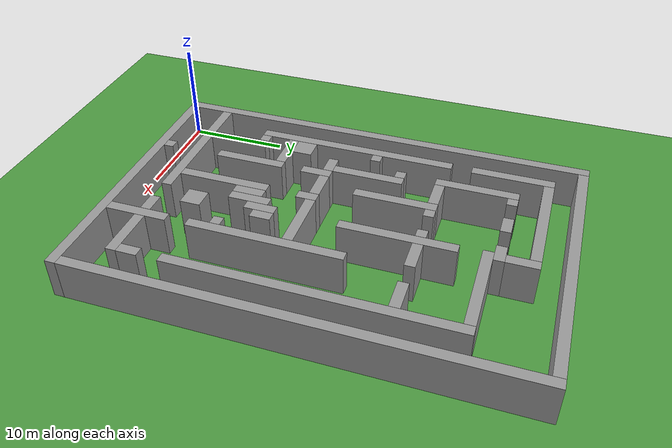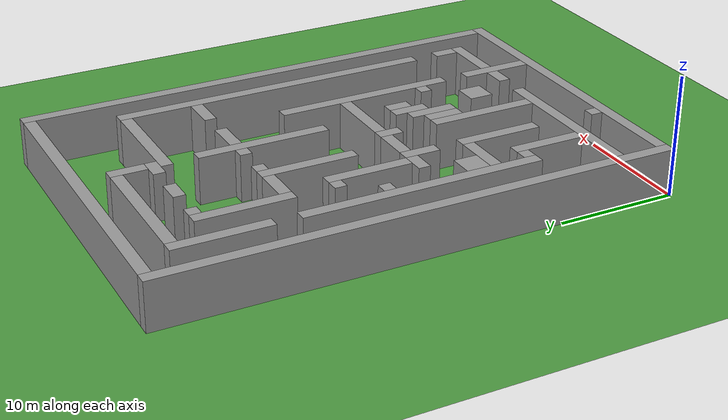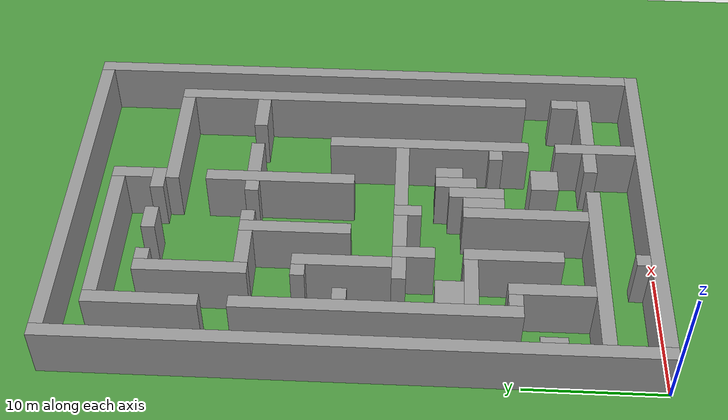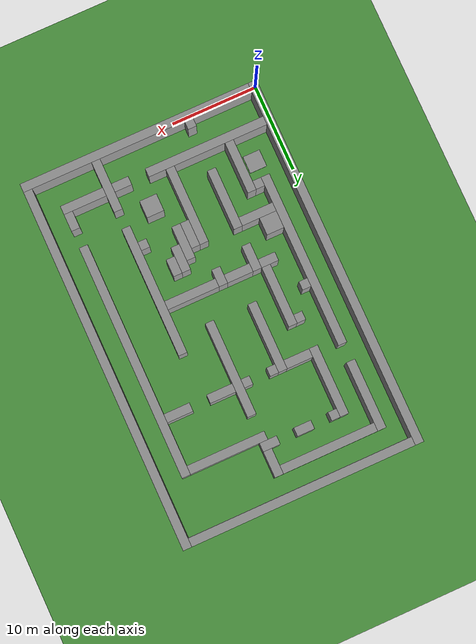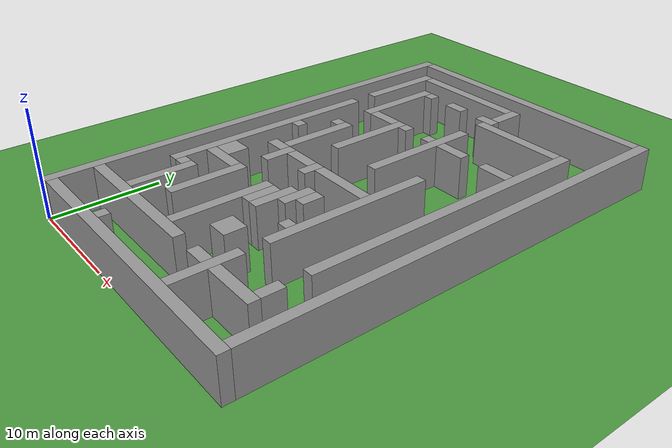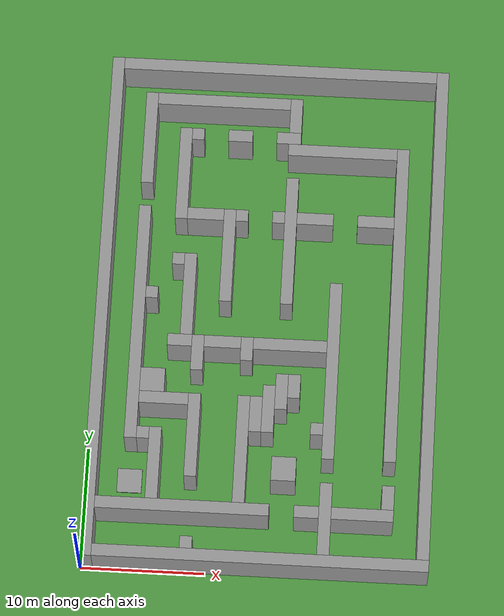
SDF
<sdf version="1.6">
 <world name="default">
  <light name="sun" type="directional">
   <pose>0 0 10 0 -0 0</pose>
   <diffuse>0.8 0.8 0.8 1</diffuse>
   <specular>0.1 0.1 0.1 1</specular>
   <attenuation>
    <range>1000</range>
    <constant>0.9</constant>
    <linear>0.01</linear>
    <quadratic>0.001</quadratic>
   </attenuation>
   <direction>-0.5 0.5 -1</direction>
  </light>
  <model name="ground_plane">
   <static>1</static>
   <link name="link">
    <collision name="collision">
     <geometry><plane><normal>0 0 1</normal><size>100 100</size></plane></geometry>
     <surface><friction><ode><mu>100</mu><mu2>50</mu2></ode></friction></surface>
    </collision>
    <visual name="visual">
     <cast_shadows>0</cast_shadows>
     <geometry><plane><normal>0 0 1</normal><size>100 100</size></plane></geometry>
     <material>
      <script><uri>file://media/materials/scripts/gazebo.material</uri><name>Gazebo/Grass</name></script>
     </material>
    </visual>
   </link>
  </model>
  <gravity>0 0 -9.8</gravity>
  <magnetic_field>6e-06 2.3e-05 -4.2e-05</magnetic_field>
  <atmosphere type="adiabatic"/>
  <physics name="default_physics" default="0" type="ode">
   <max_step_size>0.001</max_step_size>
   <real_time_factor>1</real_time_factor>
   <real_time_update_rate>1000</real_time_update_rate>
  </physics>
  <scene><ambient>0.4 0.4 0.4 1</ambient><background>0.7 0.7 0.7 1</background><shadows>1</shadows></scene>
  <spherical_coordinates>
   <surface_model>EARTH_WGS84</surface_model>
   <latitude_deg>0</latitude_deg>
   <longitude_deg>0</longitude_deg>
   <elevation>0</elevation>
   <heading_deg>0</heading_deg>
  </spherical_coordinates>
  <model name="wall">
   <pose>0.500000 21.500000 2 0 0 0</pose>
   <static>1</static>
   <link name="wall-link">
    <collision name="collision"><geometry><box><size>1 43 4</size></box></geometry></collision>
    <visual name="visual">
     <geometry><box><size>1 43 4</size></box></geometry>
     <material>
      <script><name>Gazebo/Grey</name><uri>file://media/materials/scripts/gazebo.material</uri></script>
     </material>
    </visual>
    <gravity>0</gravity>
   </link>
  </model>
  <model name="wall">
   <pose>14.500000 0.500000 2 0 0 0</pose>
   <static>1</static>
   <link name="wall-link">
    <collision name="collision"><geometry><box><size>27 1 4</size></box></geometry></collision>
    <visual name="visual">
     <geometry><box><size>27 1 4</size></box></geometry>
     <material>
      <script><name>Gazebo/Grey</name><uri>file://media/materials/scripts/gazebo.material</uri></script>
     </material>
    </visual>
    <gravity>0</gravity>
   </link>
  </model>
  <model name="wall">
   <pose>8.500000 1.500000 2 0 0 0</pose>
   <static>1</static>
   <link name="wall-link">
    <collision name="collision"><geometry><box><size>1 1 4</size></box></geometry></collision>
    <visual name="visual">
     <geometry><box><size>1 1 4</size></box></geometry>
     <material>
      <script><name>Gazebo/Grey</name><uri>file://media/materials/scripts/gazebo.material</uri></script>
     </material>
    </visual>
    <gravity>0</gravity>
   </link>
  </model>
  <model name="wall">
   <pose>19.500000 4.000000 2 0 0 0</pose>
   <static>1</static>
   <link name="wall-link">
    <collision name="collision"><geometry><box><size>1 6 4</size></box></geometry></collision>
    <visual name="visual">
     <geometry><box><size>1 6 4</size></box></geometry>
     <material>
      <script><name>Gazebo/Grey</name><uri>file://media/materials/scripts/gazebo.material</uri></script>
     </material>
    </visual>
    <gravity>0</gravity>
   </link>
  </model>
  <model name="wall">
   <pose>27.500000 22.000000 2 0 0 0</pose>
   <static>1</static>
   <link name="wall-link">
    <collision name="collision"><geometry><box><size>1 42 4</size></box></geometry></collision>
    <visual name="visual">
     <geometry><box><size>1 42 4</size></box></geometry>
     <material>
      <script><name>Gazebo/Grey</name><uri>file://media/materials/scripts/gazebo.material</uri></script>
     </material>
    </visual>
    <gravity>0</gravity>
   </link>
  </model>
  <model name="wall">
   <pose>8.000000 4.500000 2 0 0 0</pose>
   <static>1</static>
   <link name="wall-link">
    <collision name="collision"><geometry><box><size>14 1 4</size></box></geometry></collision>
    <visual name="visual">
     <geometry><box><size>14 1 4</size></box></geometry>
     <material>
      <script><name>Gazebo/Grey</name><uri>file://media/materials/scripts/gazebo.material</uri></script>
     </material>
    </visual>
    <gravity>0</gravity>
   </link>
  </model>
  <model name="wall">
   <pose>18.000000 4.500000 2 0 0 0</pose>
   <static>1</static>
   <link name="wall-link">
    <collision name="collision"><geometry><box><size>2 1 4</size></box></geometry></collision>
    <visual name="visual">
     <geometry><box><size>2 1 4</size></box></geometry>
     <material>
      <script><name>Gazebo/Grey</name><uri>file://media/materials/scripts/gazebo.material</uri></script>
     </material>
    </visual>
    <gravity>0</gravity>
   </link>
  </model>
  <model name="wall">
   <pose>22.500000 4.500000 2 0 0 0</pose>
   <static>1</static>
   <link name="wall-link">
    <collision name="collision"><geometry><box><size>5 1 4</size></box></geometry></collision>
    <visual name="visual">
     <geometry><box><size>5 1 4</size></box></geometry>
     <material>
      <script><name>Gazebo/Grey</name><uri>file://media/materials/scripts/gazebo.material</uri></script>
     </material>
    </visual>
    <gravity>0</gravity>
   </link>
  </model>
  <model name="wall">
   <pose>5.500000 8.000000 2 0 0 0</pose>
   <static>1</static>
   <link name="wall-link">
    <collision name="collision"><geometry><box><size>1 6 4</size></box></geometry></collision>
    <visual name="visual">
     <geometry><box><size>1 6 4</size></box></geometry>
     <material>
      <script><name>Gazebo/Grey</name><uri>file://media/materials/scripts/gazebo.material</uri></script>
     </material>
    </visual>
    <gravity>0</gravity>
   </link>
  </model>
  <model name="wall">
   <pose>12.500000 9.500000 2 0 0 0</pose>
   <static>1</static>
   <link name="wall-link">
    <collision name="collision"><geometry><box><size>1 9 4</size></box></geometry></collision>
    <visual name="visual">
     <geometry><box><size>1 9 4</size></box></geometry>
     <material>
      <script><name>Gazebo/Grey</name><uri>file://media/materials/scripts/gazebo.material</uri></script>
     </material>
    </visual>
    <gravity>0</gravity>
   </link>
  </model>
  <model name="wall">
   <pose>24.500000 6.000000 2 0 0 0</pose>
   <static>1</static>
   <link name="wall-link">
    <collision name="collision"><geometry><box><size>1 2 4</size></box></geometry></collision>
    <visual name="visual">
     <geometry><box><size>1 2 4</size></box></geometry>
     <material>
      <script><name>Gazebo/Grey</name><uri>file://media/materials/scripts/gazebo.material</uri></script>
     </material>
    </visual>
    <gravity>0</gravity>
   </link>
  </model>
  <model name="wall">
   <pose>8.500000 10.500000 2 0 0 0</pose>
   <static>1</static>
   <link name="wall-link">
    <collision name="collision"><geometry><box><size>1 7 4</size></box></geometry></collision>
    <visual name="visual">
     <geometry><box><size>1 7 4</size></box></geometry>
     <material>
      <script><name>Gazebo/Grey</name><uri>file://media/materials/scripts/gazebo.material</uri></script>
     </material>
    </visual>
    <gravity>0</gravity>
   </link>
  </model>
  <model name="wall">
   <pose>16.000000 8.000000 2 0 0 0</pose>
   <static>1</static>
   <link name="wall-link">
    <collision name="collision"><geometry><box><size>2 2 4</size></box></geometry></collision>
    <visual name="visual">
     <geometry><box><size>2 2 4</size></box></geometry>
     <material>
      <script><name>Gazebo/Grey</name><uri>file://media/materials/scripts/gazebo.material</uri></script>
     </material>
    </visual>
    <gravity>0</gravity>
   </link>
  </model>
  <model name="wall">
   <pose>19.500000 16.500000 2 0 0 0</pose>
   <static>1</static>
   <link name="wall-link">
    <collision name="collision"><geometry><box><size>1 15 4</size></box></geometry></collision>
    <visual name="visual">
     <geometry><box><size>1 15 4</size></box></geometry>
     <material>
      <script><name>Gazebo/Grey</name><uri>file://media/materials/scripts/gazebo.material</uri></script>
     </material>
    </visual>
    <gravity>0</gravity>
   </link>
  </model>
  <model name="wall">
   <pose>24.500000 22.500000 2 0 0 0</pose>
   <static>1</static>
   <link name="wall-link">
    <collision name="collision"><geometry><box><size>1 27 4</size></box></geometry></collision>
    <visual name="visual">
     <geometry><box><size>1 27 4</size></box></geometry>
     <material>
      <script><name>Gazebo/Grey</name><uri>file://media/materials/scripts/gazebo.material</uri></script>
     </material>
    </visual>
    <gravity>0</gravity>
   </link>
  </model>
  <model name="wall">
   <pose>3.500000 20.000000 2 0 0 0</pose>
   <static>1</static>
   <link name="wall-link">
    <collision name="collision"><geometry><box><size>1 20 4</size></box></geometry></collision>
    <visual name="visual">
     <geometry><box><size>1 20 4</size></box></geometry>
     <material>
      <script><name>Gazebo/Grey</name><uri>file://media/materials/scripts/gazebo.material</uri></script>
     </material>
    </visual>
    <gravity>0</gravity>
   </link>
  </model>
  <model name="wall">
   <pose>4.500000 10.500000 2 0 0 0</pose>
   <static>1</static>
   <link name="wall-link">
    <collision name="collision"><geometry><box><size>1 1 4</size></box></geometry></collision>
    <visual name="visual">
     <geometry><box><size>1 1 4</size></box></geometry>
     <material>
      <script><name>Gazebo/Grey</name><uri>file://media/materials/scripts/gazebo.material</uri></script>
     </material>
    </visual>
    <gravity>0</gravity>
   </link>
  </model>
  <model name="wall">
   <pose>13.500000 12.500000 2 0 0 0</pose>
   <static>1</static>
   <link name="wall-link">
    <collision name="collision"><geometry><box><size>1 3 4</size></box></geometry></collision>
    <visual name="visual">
     <geometry><box><size>1 3 4</size></box></geometry>
     <material>
      <script><name>Gazebo/Grey</name><uri>file://media/materials/scripts/gazebo.material</uri></script>
     </material>
    </visual>
    <gravity>0</gravity>
   </link>
  </model>
  <model name="wall">
   <pose>14.500000 13.000000 2 0 0 0</pose>
   <static>1</static>
   <link name="wall-link">
    <collision name="collision"><geometry><box><size>1 4 4</size></box></geometry></collision>
    <visual name="visual">
     <geometry><box><size>1 4 4</size></box></geometry>
     <material>
      <script><name>Gazebo/Grey</name><uri>file://media/materials/scripts/gazebo.material</uri></script>
     </material>
    </visual>
    <gravity>0</gravity>
   </link>
  </model>
  <model name="wall">
   <pose>18.500000 11.500000 2 0 0 0</pose>
   <static>1</static>
   <link name="wall-link">
    <collision name="collision"><geometry><box><size>1 1 4</size></box></geometry></collision>
    <visual name="visual">
     <geometry><box><size>1 1 4</size></box></geometry>
     <material>
      <script><name>Gazebo/Grey</name><uri>file://media/materials/scripts/gazebo.material</uri></script>
     </material>
    </visual>
    <gravity>0</gravity>
   </link>
  </model>
  <model name="wall">
   <pose>6.000000 13.500000 2 0 0 0</pose>
   <static>1</static>
   <link name="wall-link">
    <collision name="collision"><geometry><box><size>4 1 4</size></box></geometry></collision>
    <visual name="visual">
     <geometry><box><size>4 1 4</size></box></geometry>
     <material>
      <script><name>Gazebo/Grey</name><uri>file://media/materials/scripts/gazebo.material</uri></script>
     </material>
    </visual>
    <gravity>0</gravity>
   </link>
  </model>
  <model name="wall">
   <pose>15.500000 14.500000 2 0 0 0</pose>
   <static>1</static>
   <link name="wall-link">
    <collision name="collision"><geometry><box><size>1 3 4</size></box></geometry></collision>
    <visual name="visual">
     <geometry><box><size>1 3 4</size></box></geometry>
     <material>
      <script><name>Gazebo/Grey</name><uri>file://media/materials/scripts/gazebo.material</uri></script>
     </material>
    </visual>
    <gravity>0</gravity>
   </link>
  </model>
  <model name="wall">
   <pose>5.000000 15.000000 2 0 0 0</pose>
   <static>1</static>
   <link name="wall-link">
    <collision name="collision"><geometry><box><size>2 2 4</size></box></geometry></collision>
    <visual name="visual">
     <geometry><box><size>2 2 4</size></box></geometry>
     <material>
      <script><name>Gazebo/Grey</name><uri>file://media/materials/scripts/gazebo.material</uri></script>
     </material>
    </visual>
    <gravity>0</gravity>
   </link>
  </model>
  <model name="wall">
   <pose>16.500000 15.000000 2 0 0 0</pose>
   <static>1</static>
   <link name="wall-link">
    <collision name="collision"><geometry><box><size>1 2 4</size></box></geometry></collision>
    <visual name="visual">
     <geometry><box><size>1 2 4</size></box></geometry>
     <material>
      <script><name>Gazebo/Grey</name><uri>file://media/materials/scripts/gazebo.material</uri></script>
     </material>
    </visual>
    <gravity>0</gravity>
   </link>
  </model>
  <model name="wall">
   <pose>8.500000 17.500000 2 0 0 0</pose>
   <static>1</static>
   <link name="wall-link">
    <collision name="collision"><geometry><box><size>1 3 4</size></box></geometry></collision>
    <visual name="visual">
     <geometry><box><size>1 3 4</size></box></geometry>
     <material>
      <script><name>Gazebo/Grey</name><uri>file://media/materials/scripts/gazebo.material</uri></script>
     </material>
    </visual>
    <gravity>0</gravity>
   </link>
  </model>
  <model name="wall">
   <pose>12.500000 18.000000 2 0 0 0</pose>
   <static>1</static>
   <link name="wall-link">
    <collision name="collision"><geometry><box><size>1 2 4</size></box></geometry></collision>
    <visual name="visual">
     <geometry><box><size>1 2 4</size></box></geometry>
     <material>
      <script><name>Gazebo/Grey</name><uri>file://media/materials/scripts/gazebo.material</uri></script>
     </material>
    </visual>
    <gravity>0</gravity>
   </link>
  </model>
  <model name="wall">
   <pose>7.000000 18.500000 2 0 0 0</pose>
   <static>1</static>
   <link name="wall-link">
    <collision name="collision"><geometry><box><size>2 1 4</size></box></geometry></collision>
    <visual name="visual">
     <geometry><box><size>2 1 4</size></box></geometry>
     <material>
      <script><name>Gazebo/Grey</name><uri>file://media/materials/scripts/gazebo.material</uri></script>
     </material>
    </visual>
    <gravity>0</gravity>
   </link>
  </model>
  <model name="wall">
   <pose>10.500000 18.500000 2 0 0 0</pose>
   <static>1</static>
   <link name="wall-link">
    <collision name="collision"><geometry><box><size>3 1 4</size></box></geometry></collision>
    <visual name="visual">
     <geometry><box><size>3 1 4</size></box></geometry>
     <material>
      <script><name>Gazebo/Grey</name><uri>file://media/materials/scripts/gazebo.material</uri></script>
     </material>
    </visual>
    <gravity>0</gravity>
   </link>
  </model>
  <model name="wall">
   <pose>16.000000 18.500000 2 0 0 0</pose>
   <static>1</static>
   <link name="wall-link">
    <collision name="collision"><geometry><box><size>6 1 4</size></box></geometry></collision>
    <visual name="visual">
     <geometry><box><size>6 1 4</size></box></geometry>
     <material>
      <script><name>Gazebo/Grey</name><uri>file://media/materials/scripts/gazebo.material</uri></script>
     </material>
    </visual>
    <gravity>0</gravity>
   </link>
  </model>
  <model name="wall">
   <pose>7.500000 22.500000 2 0 0 0</pose>
   <static>1</static>
   <link name="wall-link">
    <collision name="collision"><geometry><box><size>1 7 4</size></box></geometry></collision>
    <visual name="visual">
     <geometry><box><size>1 7 4</size></box></geometry>
     <material>
      <script><name>Gazebo/Grey</name><uri>file://media/materials/scripts/gazebo.material</uri></script>
     </material>
    </visual>
    <gravity>0</gravity>
   </link>
  </model>
  <model name="wall">
   <pose>4.500000 22.500000 2 0 0 0</pose>
   <static>1</static>
   <link name="wall-link">
    <collision name="collision"><geometry><box><size>1 1 4</size></box></geometry></collision>
    <visual name="visual">
     <geometry><box><size>1 1 4</size></box></geometry>
     <material>
      <script><name>Gazebo/Grey</name><uri>file://media/materials/scripts/gazebo.material</uri></script>
     </material>
    </visual>
    <gravity>0</gravity>
   </link>
  </model>
  <model name="wall">
   <pose>10.500000 26.000000 2 0 0 0</pose>
   <static>1</static>
   <link name="wall-link">
    <collision name="collision"><geometry><box><size>1 8 4</size></box></geometry></collision>
    <visual name="visual">
     <geometry><box><size>1 8 4</size></box></geometry>
     <material>
      <script><name>Gazebo/Grey</name><uri>file://media/materials/scripts/gazebo.material</uri></script>
     </material>
    </visual>
    <gravity>0</gravity>
   </link>
  </model>
  <model name="wall">
   <pose>15.500000 27.500000 2 0 0 0</pose>
   <static>1</static>
   <link name="wall-link">
    <collision name="collision"><geometry><box><size>1 11 4</size></box></geometry></collision>
    <visual name="visual">
     <geometry><box><size>1 11 4</size></box></geometry>
     <material>
      <script><name>Gazebo/Grey</name><uri>file://media/materials/scripts/gazebo.material</uri></script>
     </material>
    </visual>
    <gravity>0</gravity>
   </link>
  </model>
  <model name="wall">
   <pose>6.500000 25.500000 2 0 0 0</pose>
   <static>1</static>
   <link name="wall-link">
    <collision name="collision"><geometry><box><size>1 1 4</size></box></geometry></collision>
    <visual name="visual">
     <geometry><box><size>1 1 4</size></box></geometry>
     <material>
      <script><name>Gazebo/Grey</name><uri>file://media/materials/scripts/gazebo.material</uri></script>
     </material>
    </visual>
    <gravity>0</gravity>
   </link>
  </model>
  <model name="wall">
   <pose>6.500000 33.000000 2 0 0 0</pose>
   <static>1</static>
   <link name="wall-link">
    <collision name="collision"><geometry><box><size>1 8 4</size></box></geometry></collision>
    <visual name="visual">
     <geometry><box><size>1 8 4</size></box></geometry>
     <material>
      <script><name>Gazebo/Grey</name><uri>file://media/materials/scripts/gazebo.material</uri></script>
     </material>
    </visual>
    <gravity>0</gravity>
   </link>
  </model>
  <model name="wall">
   <pose>8.500000 29.500000 2 0 0 0</pose>
   <static>1</static>
   <link name="wall-link">
    <collision name="collision"><geometry><box><size>3 1 4</size></box></geometry></collision>
    <visual name="visual">
     <geometry><box><size>3 1 4</size></box></geometry>
     <material>
      <script><name>Gazebo/Grey</name><uri>file://media/materials/scripts/gazebo.material</uri></script>
     </material>
    </visual>
    <gravity>0</gravity>
   </link>
  </model>
  <model name="wall">
   <pose>11.500000 29.500000 2 0 0 0</pose>
   <static>1</static>
   <link name="wall-link">
    <collision name="collision"><geometry><box><size>1 1 4</size></box></geometry></collision>
    <visual name="visual">
     <geometry><box><size>1 1 4</size></box></geometry>
     <material>
      <script><name>Gazebo/Grey</name><uri>file://media/materials/scripts/gazebo.material</uri></script>
     </material>
    </visual>
    <gravity>0</gravity>
   </link>
  </model>
  <model name="wall">
   <pose>14.500000 29.500000 2 0 0 0</pose>
   <static>1</static>
   <link name="wall-link">
    <collision name="collision"><geometry><box><size>1 1 4</size></box></geometry></collision>
    <visual name="visual">
     <geometry><box><size>1 1 4</size></box></geometry>
     <material>
      <script><name>Gazebo/Grey</name><uri>file://media/materials/scripts/gazebo.material</uri></script>
     </material>
    </visual>
    <gravity>0</gravity>
   </link>
  </model>
  <model name="wall">
   <pose>17.500000 29.500000 2 0 0 0</pose>
   <static>1</static>
   <link name="wall-link">
    <collision name="collision"><geometry><box><size>3 1 4</size></box></geometry></collision>
    <visual name="visual">
     <geometry><box><size>3 1 4</size></box></geometry>
     <material>
      <script><name>Gazebo/Grey</name><uri>file://media/materials/scripts/gazebo.material</uri></script>
     </material>
    </visual>
    <gravity>0</gravity>
   </link>
  </model>
  <model name="wall">
   <pose>22.500000 29.500000 2 0 0 0</pose>
   <static>1</static>
   <link name="wall-link">
    <collision name="collision"><geometry><box><size>3 1 4</size></box></geometry></collision>
    <visual name="visual">
     <geometry><box><size>3 1 4</size></box></geometry>
     <material>
      <script><name>Gazebo/Grey</name><uri>file://media/materials/scripts/gazebo.material</uri></script>
     </material>
    </visual>
    <gravity>0</gravity>
   </link>
  </model>
  <model name="wall">
   <pose>3.500000 36.000000 2 0 0 0</pose>
   <static>1</static>
   <link name="wall-link">
    <collision name="collision"><geometry><box><size>1 8 4</size></box></geometry></collision>
    <visual name="visual">
     <geometry><box><size>1 8 4</size></box></geometry>
     <material>
      <script><name>Gazebo/Grey</name><uri>file://media/materials/scripts/gazebo.material</uri></script>
     </material>
    </visual>
    <gravity>0</gravity>
   </link>
  </model>
  <model name="wall">
   <pose>19.500000 35.500000 2 0 0 0</pose>
   <static>1</static>
   <link name="wall-link">
    <collision name="collision"><geometry><box><size>9 1 4</size></box></geometry></collision>
    <visual name="visual">
     <geometry><box><size>9 1 4</size></box></geometry>
     <material>
      <script><name>Gazebo/Grey</name><uri>file://media/materials/scripts/gazebo.material</uri></script>
     </material>
    </visual>
    <gravity>0</gravity>
   </link>
  </model>
  <model name="wall">
   <pose>7.500000 36.500000 2 0 0 0</pose>
   <static>1</static>
   <link name="wall-link">
    <collision name="collision"><geometry><box><size>1 1 4</size></box></geometry></collision>
    <visual name="visual">
     <geometry><box><size>1 1 4</size></box></geometry>
     <material>
      <script><name>Gazebo/Grey</name><uri>file://media/materials/scripts/gazebo.material</uri></script>
     </material>
    </visual>
    <gravity>0</gravity>
   </link>
  </model>
  <model name="wall">
   <pose>11.000000 36.500000 2 0 0 0</pose>
   <static>1</static>
   <link name="wall-link">
    <collision name="collision"><geometry><box><size>2 1 4</size></box></geometry></collision>
    <visual name="visual">
     <geometry><box><size>2 1 4</size></box></geometry>
     <material>
      <script><name>Gazebo/Grey</name><uri>file://media/materials/scripts/gazebo.material</uri></script>
     </material>
    </visual>
    <gravity>0</gravity>
   </link>
  </model>
  <model name="wall">
   <pose>15.000000 36.500000 2 0 0 0</pose>
   <static>1</static>
   <link name="wall-link">
    <collision name="collision"><geometry><box><size>2 1 4</size></box></geometry></collision>
    <visual name="visual">
     <geometry><box><size>2 1 4</size></box></geometry>
     <material>
      <script><name>Gazebo/Grey</name><uri>file://media/materials/scripts/gazebo.material</uri></script>
     </material>
    </visual>
    <gravity>0</gravity>
   </link>
  </model>
  <model name="wall">
   <pose>15.500000 38.500000 2 0 0 0</pose>
   <static>1</static>
   <link name="wall-link">
    <collision name="collision"><geometry><box><size>1 3 4</size></box></geometry></collision>
    <visual name="visual">
     <geometry><box><size>1 3 4</size></box></geometry>
     <material>
      <script><name>Gazebo/Grey</name><uri>file://media/materials/scripts/gazebo.material</uri></script>
     </material>
    </visual>
    <gravity>0</gravity>
   </link>
  </model>
  <model name="wall">
   <pose>9.500000 39.500000 2 0 0 0</pose>
   <static>1</static>
   <link name="wall-link">
    <collision name="collision"><geometry><box><size>11 1 4</size></box></geometry></collision>
    <visual name="visual">
     <geometry><box><size>11 1 4</size></box></geometry>
     <material>
      <script><name>Gazebo/Grey</name><uri>file://media/materials/scripts/gazebo.material</uri></script>
     </material>
    </visual>
    <gravity>0</gravity>
   </link>
  </model>
  <model name="wall">
   <pose>14.000000 42.500000 2 0 0 0</pose>
   <static>1</static>
   <link name="wall-link">
    <collision name="collision"><geometry><box><size>26 1 4</size></box></geometry></collision>
    <visual name="visual">
     <geometry><box><size>26 1 4</size></box></geometry>
     <material>
      <script><name>Gazebo/Grey</name><uri>file://media/materials/scripts/gazebo.material</uri></script>
     </material>
    </visual>
    <gravity>0</gravity>
   </link>
  </model>
  <model name="goal">
   <pose>3.5 7.5 0.05 0 -0 0</pose>
   <static>1</static>
   <link name="link">
    <collision name="collision"><geometry><box><size>2.0 2.0 0.1</size></box></geometry></collision>
    <visual name="visual">
     <geometry><box><size>2.0 2.0 0.1</size></box></geometry>
     <material>
      <script><name>Gazebo/Grey</name><uri>file://media/materials/scripts/gazebo.material</uri></script>
     </material>
    </visual>
   </link>
  </model>
 </world>
</sdf>
